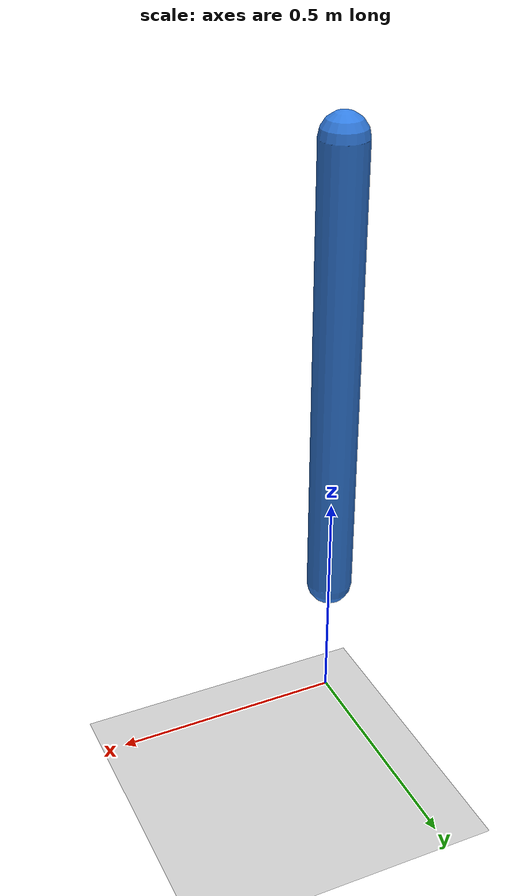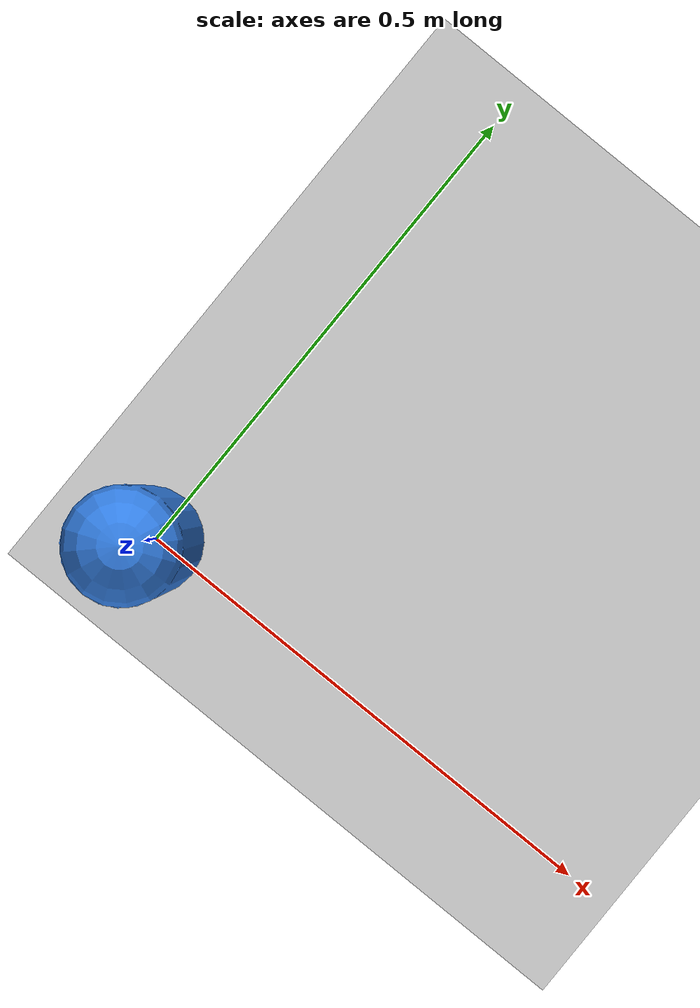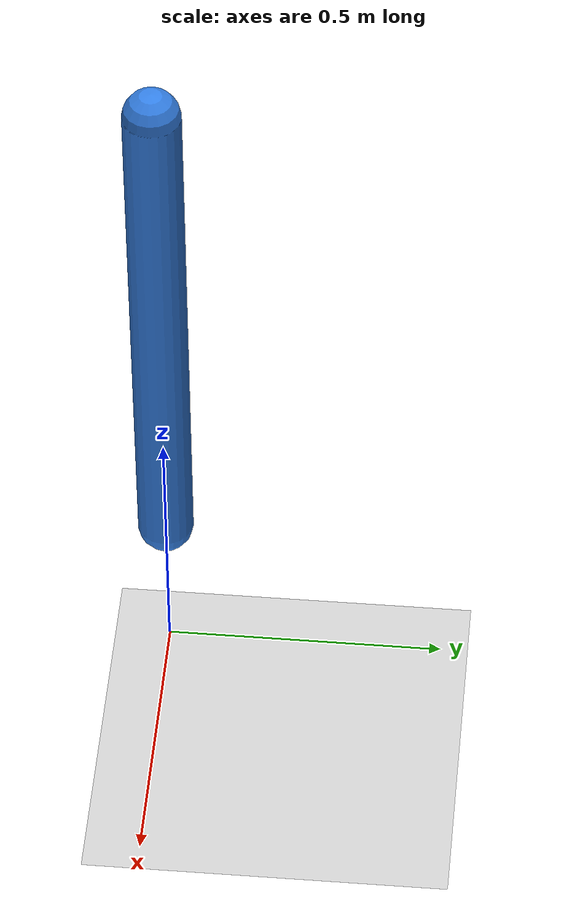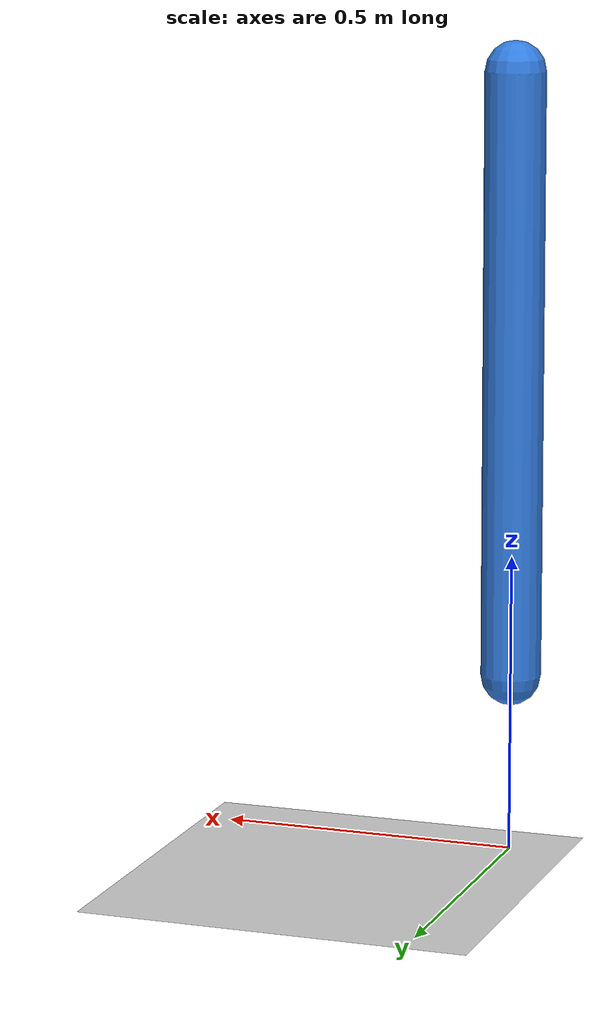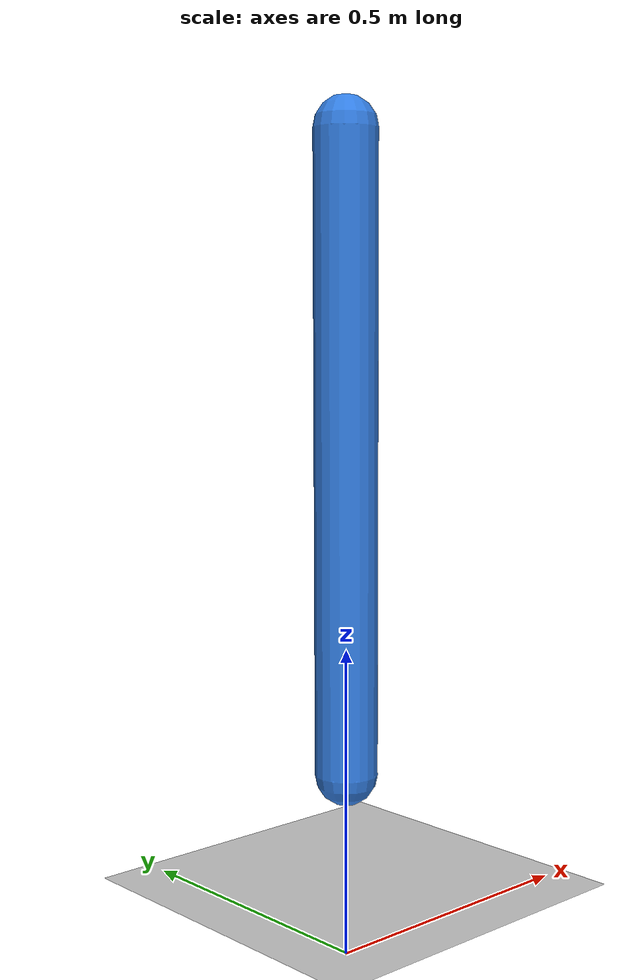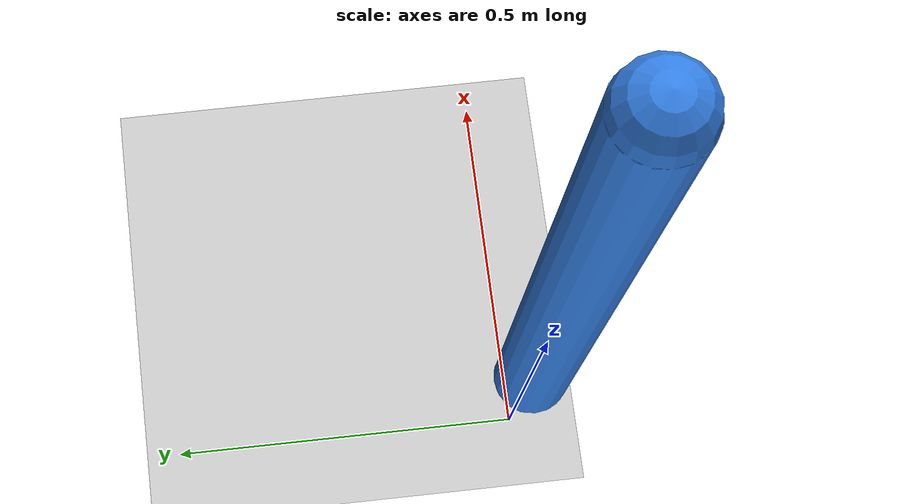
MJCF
<mujoco model="simple_pendulum">
    <option
        timestep="0.002"
        gravity="0 0 -9.81"
    />

    <worldbody>
        <light
            pos="0 0 3"
            dir="0 0 -1"
        />

        <geom
            name="floor"
            type="plane"
            size="2 2 0.1"
            rgba="0.8 0.8 0.8 1"
        />

        <body
            name="pendulum"
            pos="0 0 1.3"
        >
            <joint
                name="hinge"
                type="hinge"
                axis="0 1 0"
                damping="0.1"
            />

            <geom
                name="rod"
                type="capsule"
                fromto="0 0 0 0 0 -1"
                size="0.05"
                density="500"
                rgba="0.2 0.5 0.9 1"
            />
        </body>
    </worldbody>

    <actuator>
        <motor
            name="hinge_motor"
            joint="hinge"
            gear="10"
            ctrllimited="true"
            ctrlrange="-1 1"
        />
    </actuator>

    <sensor>
        <jointpos
            name="hinge_position"
            joint="hinge"
        />

        <jointvel
            name="hinge_velocity"
            joint="hinge"
        />
    </sensor>
</mujoco>
